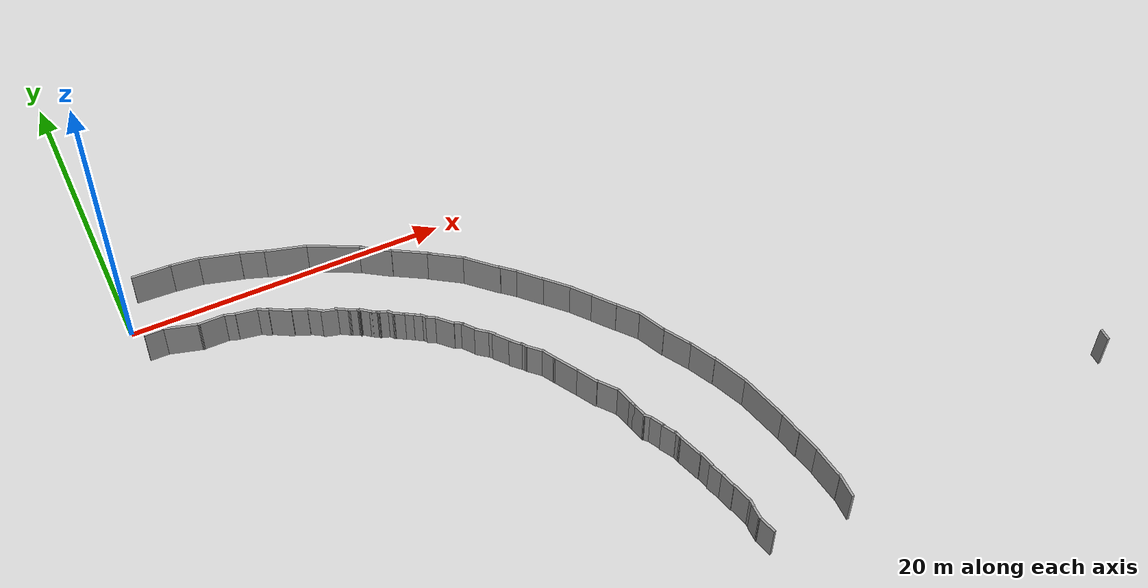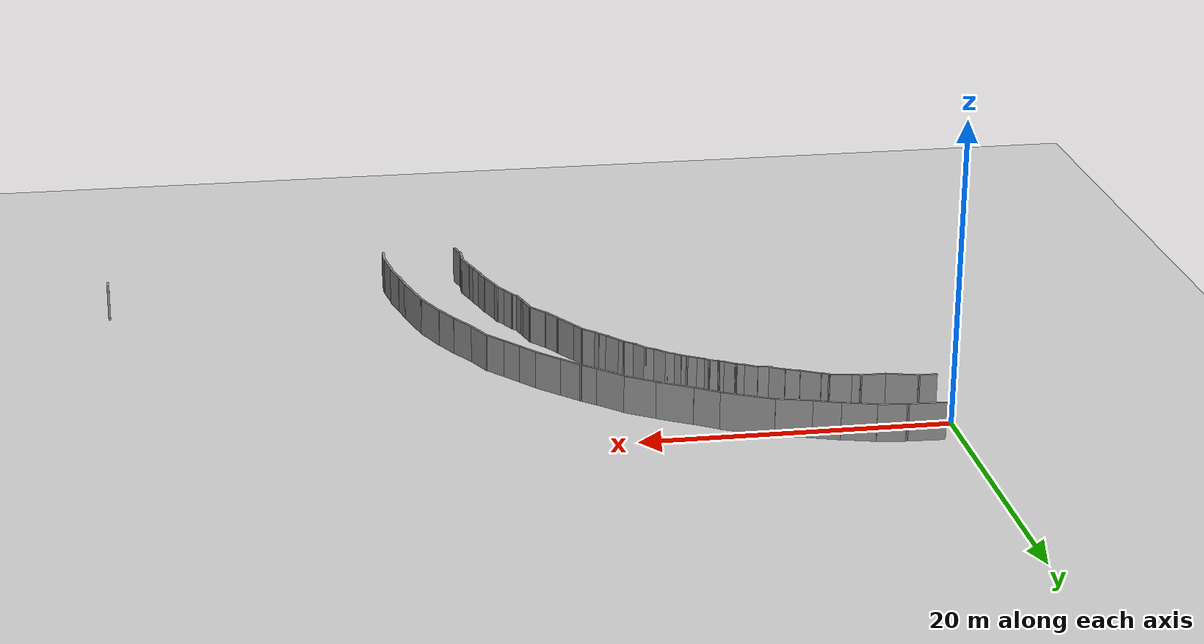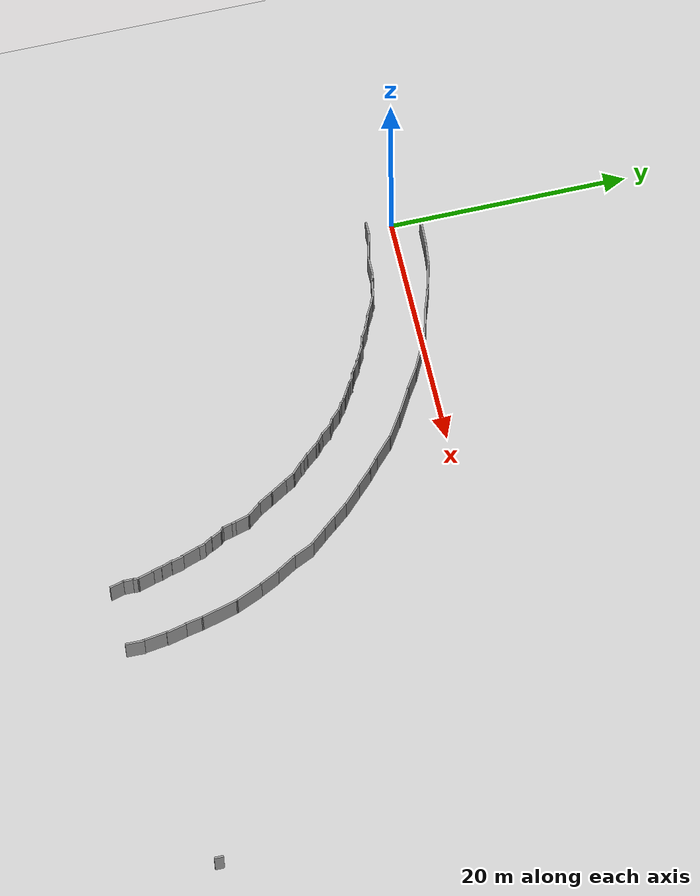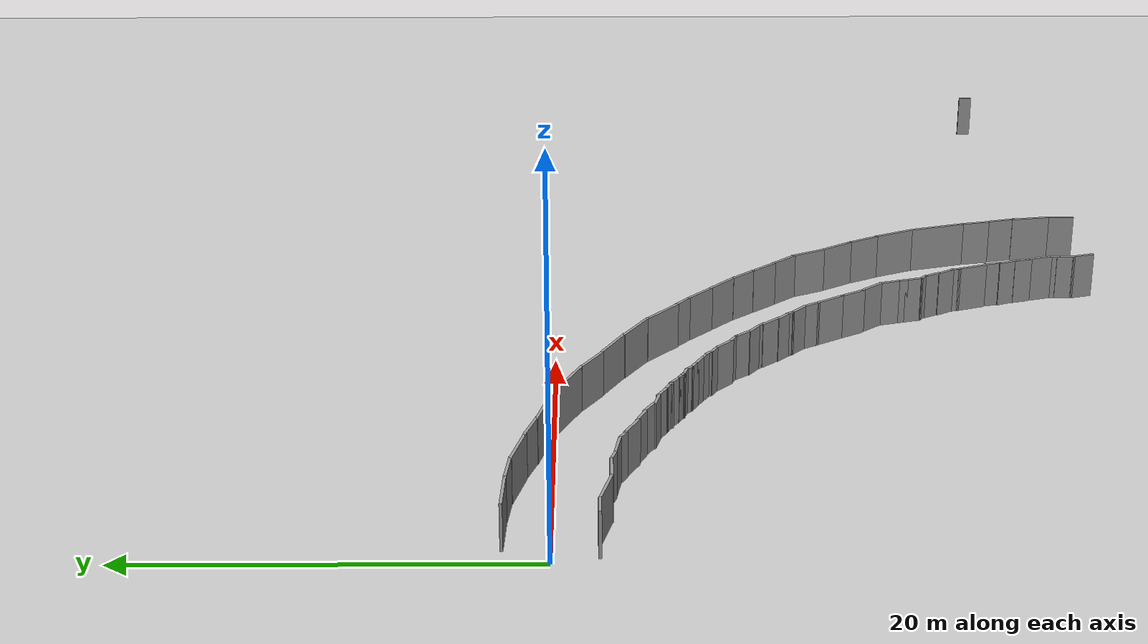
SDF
<sdf version="1.6">
 <world name="default">
  <model name="ground_plane">
   <static>1</static>
   <link name="link">
    <collision name="collision">
     <geometry><plane><normal>0 0 1</normal><size>100 100</size></plane></geometry>
     <surface><friction><ode><mu>100</mu><mu2>50</mu2></ode></friction></surface>
    </collision>
    <visual name="visual">
     <cast_shadows>0</cast_shadows>
     <geometry><plane><normal>0 0 1</normal><size>100 100</size></plane></geometry>
     <material>
      <script><uri>file://media/materials/scripts/gazebo.material</uri><name>Gazebo/Grey</name></script>
     </material>
    </visual>
   </link>
  </model>
  <model name="yuvarlak_sonnn">
   <pose>8.74042 -31.6469 0 0 -0 0</pose>
   <link name="Wall_136">
    <collision name="Wall_136_Collision">
     <geometry><box><size>1.56151 0.15 2.5</size></box></geometry>
     <pose>0 0 1.25 0 -0 0</pose>
    </collision>
    <visual name="Wall_136_Visual">
     <pose>0 0 1.25 0 -0 0</pose>
     <geometry><box><size>1.56151 0.15 2.5</size></box></geometry>
     <material>
      <script><uri>file://media/materials/scripts/gazebo.material</uri><name>Gazebo/Grey</name></script>
      <ambient>1 1 1 1</ambient>
     </material>
    </visual>
    <pose>24.218 3.14095 0 0 -0 1.54912</pose>
   </link>
   <link name="Wall_137">
    <collision name="Wall_137_Collision">
     <geometry><box><size>2.14335 0.15 2.5</size></box></geometry>
     <pose>0 0 1.25 0 -0 0</pose>
    </collision>
    <visual name="Wall_137_Visual">
     <pose>0 0 1.25 0 -0 0</pose>
     <geometry><box><size>2.14335 0.15 2.5</size></box></geometry>
     <material>
      <script><uri>file://media/materials/scripts/gazebo.material</uri><name>Gazebo/Grey</name></script>
      <ambient>1 1 1 1</ambient>
     </material>
    </visual>
    <pose>24.0632 4.83341 0 0 -0 1.71117</pose>
   </link>
   <link name="Wall_138">
    <collision name="Wall_138_Collision">
     <geometry><box><size>1.71566 0.15 2.5</size></box></geometry>
     <pose>0 0 1.25 0 -0 0</pose>
    </collision>
    <visual name="Wall_138_Visual">
     <pose>0 0 1.25 0 -0 0</pose>
     <geometry><box><size>1.71566 0.15 2.5</size></box></geometry>
     <material>
      <script><uri>file://media/materials/scripts/gazebo.material</uri><name>Gazebo/Grey</name></script>
      <ambient>1 1 1 1</ambient>
     </material>
    </visual>
    <pose>23.7779 6.58296 0 0 -0 1.79817</pose>
   </link>
   <link name="Wall_139">
    <collision name="Wall_139_Collision">
     <geometry><box><size>1.60282 0.15 2.5</size></box></geometry>
     <pose>0 0 1.25 0 -0 0</pose>
    </collision>
    <visual name="Wall_139_Visual">
     <pose>0 0 1.25 0 -0 0</pose>
     <geometry><box><size>1.60282 0.15 2.5</size></box></geometry>
     <material>
      <script><uri>file://media/materials/scripts/gazebo.material</uri><name>Gazebo/Grey</name></script>
      <ambient>1 1 1 1</ambient>
     </material>
    </visual>
    <pose>23.4362 8.05945 0 0 -0 1.75733</pose>
   </link>
   <link name="Wall_140">
    <collision name="Wall_140_Collision">
     <geometry><box><size>3.25 0.15 2.5</size></box></geometry>
     <pose>0 0 1.25 0 -0 0</pose>
    </collision>
    <visual name="Wall_140_Visual">
     <pose>0 0 1.25 0 -0 0</pose>
     <geometry><box><size>3.25 0.15 2.5</size></box></geometry>
     <material>
      <script><uri>file://media/materials/scripts/gazebo.material</uri><name>Gazebo/Grey</name></script>
      <ambient>1 1 1 1</ambient>
     </material>
    </visual>
    <pose>22.9003 10.2704 0 0 -0 1.8326</pose>
   </link>
   <link name="Wall_141">
    <collision name="Wall_141_Collision">
     <geometry><box><size>2.47557 0.15 2.5</size></box></geometry>
     <pose>0 0 1.25 0 -0 0</pose>
    </collision>
    <visual name="Wall_141_Visual">
     <pose>0 0 1.25 0 -0 0</pose>
     <geometry><box><size>2.47557 0.15 2.5</size></box></geometry>
     <material>
      <script><uri>file://media/materials/scripts/gazebo.material</uri><name>Gazebo/Grey</name></script>
      <ambient>1 1 1 1</ambient>
     </material>
    </visual>
    <pose>22.0445 12.8379 0 0 -0 1.97247</pose>
   </link>
   <link name="Wall_142">
    <collision name="Wall_142_Collision">
     <geometry><box><size>1.90004 0.15 2.5</size></box></geometry>
     <pose>0 0 1.25 0 -0 0</pose>
    </collision>
    <visual name="Wall_142_Visual">
     <pose>0 0 1.25 0 -0 0</pose>
     <geometry><box><size>1.90004 0.15 2.5</size></box></geometry>
     <material>
      <script><uri>file://media/materials/scripts/gazebo.material</uri><name>Gazebo/Grey</name></script>
      <ambient>1 1 1 1</ambient>
     </material>
    </visual>
    <pose>21.1798 14.6713 0 0 -0 2.03268</pose>
   </link>
   <link name="Wall_143">
    <collision name="Wall_143_Collision">
     <geometry><box><size>2.02044 0.15 2.5</size></box></geometry>
     <pose>0 0 1.25 0 -0 0</pose>
    </collision>
    <visual name="Wall_143_Visual">
     <pose>0 0 1.25 0 -0 0</pose>
     <geometry><box><size>2.02044 0.15 2.5</size></box></geometry>
     <material>
      <script><uri>file://media/materials/scripts/gazebo.material</uri><name>Gazebo/Grey</name></script>
      <ambient>1 1 1 1</ambient>
     </material>
    </visual>
    <pose>20.3073 16.2356 0 0 -0 2.11302</pose>
   </link>
   <link name="Wall_144">
    <collision name="Wall_144_Collision">
     <geometry><box><size>2.02372 0.15 2.5</size></box></geometry>
     <pose>0 0 1.25 0 -0 0</pose>
    </collision>
    <visual name="Wall_144_Visual">
     <pose>0 0 1.25 0 -0 0</pose>
     <geometry><box><size>2.02372 0.15 2.5</size></box></geometry>
     <material>
      <script><uri>file://media/materials/scripts/gazebo.material</uri><name>Gazebo/Grey</name></script>
      <ambient>1 1 1 1</ambient>
     </material>
    </visual>
    <pose>19.4326 17.8679 0 0 -0 2.0024</pose>
   </link>
   <link name="Wall_145">
    <collision name="Wall_145_Collision">
     <geometry><box><size>1.67133 0.15 2.5</size></box></geometry>
     <pose>0 0 1.25 0 -0 0</pose>
    </collision>
    <visual name="Wall_145_Visual">
     <pose>0 0 1.25 0 -0 0</pose>
     <geometry><box><size>1.67133 0.15 2.5</size></box></geometry>
     <material>
      <script><uri>file://media/materials/scripts/gazebo.material</uri><name>Gazebo/Grey</name></script>
      <ambient>1 1 1 1</ambient>
     </material>
    </visual>
    <pose>18.5351 19.285 0 0 -0 2.26257</pose>
   </link>
   <link name="Wall_146">
    <collision name="Wall_146_Collision">
     <geometry><box><size>1.63137 0.15 2.5</size></box></geometry>
     <pose>0 0 1.25 0 -0 0</pose>
    </collision>
    <visual name="Wall_146_Visual">
     <pose>0 0 1.25 0 -0 0</pose>
     <geometry><box><size>1.63137 0.15 2.5</size></box></geometry>
     <material>
      <script><uri>file://media/materials/scripts/gazebo.material</uri><name>Gazebo/Grey</name></script>
      <ambient>1 1 1 1</ambient>
     </material>
    </visual>
    <pose>17.5795 20.4228 0 0 -0 2.25891</pose>
   </link>
   <link name="Wall_147">
    <collision name="Wall_147_Collision">
     <geometry><box><size>1.58845 0.15 2.5</size></box></geometry>
     <pose>0 0 1.25 0 -0 0</pose>
    </collision>
    <visual name="Wall_147_Visual">
     <pose>0 0 1.25 0 -0 0</pose>
     <geometry><box><size>1.58845 0.15 2.5</size></box></geometry>
     <material>
      <script><uri>file://media/materials/scripts/gazebo.material</uri><name>Gazebo/Grey</name></script>
      <ambient>1 1 1 1</ambient>
     </material>
    </visual>
    <pose>16.6509 21.5694 0 0 -0 2.26146</pose>
   </link>
   <link name="Wall_148">
    <collision name="Wall_148_Collision">
     <geometry><box><size>2 0.15 2.5</size></box></geometry>
     <pose>0 0 1.25 0 -0 0</pose>
    </collision>
    <visual name="Wall_148_Visual">
     <pose>0 0 1.25 0 -0 0</pose>
     <geometry><box><size>2 0.15 2.5</size></box></geometry>
     <material>
      <script><uri>file://media/materials/scripts/gazebo.material</uri><name>Gazebo/Grey</name></script>
      <ambient>1 1 1 1</ambient>
     </material>
    </visual>
    <pose>15.5588 22.7779 0 0 -0 2.35619</pose>
   </link>
   <link name="Wall_149">
    <collision name="Wall_149_Collision">
     <geometry><box><size>1.82124 0.15 2.5</size></box></geometry>
     <pose>0 0 1.25 0 -0 0</pose>
    </collision>
    <visual name="Wall_149_Visual">
     <pose>0 0 1.25 0 -0 0</pose>
     <geometry><box><size>1.82124 0.15 2.5</size></box></geometry>
     <material>
      <script><uri>file://media/materials/scripts/gazebo.material</uri><name>Gazebo/Grey</name></script>
      <ambient>1 1 1 1</ambient>
     </material>
    </visual>
    <pose>14.2977 24.0268 0 0 -0 2.34944</pose>
   </link>
   <link name="Wall_150">
    <collision name="Wall_150_Collision">
     <geometry><box><size>1.2381 0.15 2.5</size></box></geometry>
     <pose>0 0 1.25 0 -0 0</pose>
    </collision>
    <visual name="Wall_150_Visual">
     <pose>0 0 1.25 0 -0 0</pose>
     <geometry><box><size>1.2381 0.15 2.5</size></box></geometry>
     <material>
      <script><uri>file://media/materials/scripts/gazebo.material</uri><name>Gazebo/Grey</name></script>
      <ambient>1 1 1 1</ambient>
     </material>
    </visual>
    <pose>13.3018 24.9804 0 0 -0 2.42159</pose>
   </link>
   <link name="Wall_151">
    <collision name="Wall_151_Collision">
     <geometry><box><size>2.40289 0.15 2.5</size></box></geometry>
     <pose>0 0 1.25 0 -0 0</pose>
    </collision>
    <visual name="Wall_151_Visual">
     <pose>0 0 1.25 0 -0 0</pose>
     <geometry><box><size>2.40289 0.15 2.5</size></box></geometry>
     <material>
      <script><uri>file://media/materials/scripts/gazebo.material</uri><name>Gazebo/Grey</name></script>
      <ambient>1 1 1 1</ambient>
     </material>
    </visual>
    <pose>12.0529 26.0916 0 0 -0 2.38584</pose>
   </link>
   <link name="Wall_154">
    <collision name="Wall_154_Collision">
     <geometry><box><size>2.39428 0.15 2.5</size></box></geometry>
     <pose>0 0 1.25 0 -0 0</pose>
    </collision>
    <visual name="Wall_154_Visual">
     <pose>0 0 1.25 0 -0 0</pose>
     <geometry><box><size>2.39428 0.15 2.5</size></box></geometry>
     <material>
      <script><uri>file://media/materials/scripts/gazebo.material</uri><name>Gazebo/Grey</name></script>
      <ambient>1 1 1 1</ambient>
     </material>
    </visual>
    <pose>10.3105 27.493 0 0 -0 2.56827</pose>
   </link>
   <link name="Wall_155">
    <collision name="Wall_155_Collision">
     <geometry><box><size>2.5 0.15 2.5</size></box></geometry>
     <pose>0 0 1.25 0 -0 0</pose>
    </collision>
    <visual name="Wall_155_Visual">
     <pose>0 0 1.25 0 -0 0</pose>
     <geometry><box><size>2.5 0.15 2.5</size></box></geometry>
     <material>
      <script><uri>file://media/materials/scripts/gazebo.material</uri><name>Gazebo/Grey</name></script>
      <ambient>1 1 1 1</ambient>
     </material>
    </visual>
    <pose>8.40374 28.6891 0 0 -0 2.61799</pose>
   </link>
   <link name="Wall_156">
    <collision name="Wall_156_Collision">
     <geometry><box><size>2.01077 0.15 2.5</size></box></geometry>
     <pose>0 0 1.25 0 -0 0</pose>
    </collision>
    <visual name="Wall_156_Visual">
     <pose>0 0 1.25 0 -0 0</pose>
     <geometry><box><size>2.01077 0.15 2.5</size></box></geometry>
     <material>
      <script><uri>file://media/materials/scripts/gazebo.material</uri><name>Gazebo/Grey</name></script>
      <ambient>1 1 1 1</ambient>
     </material>
    </visual>
    <pose>6.55302 29.7844 0 0 -0 2.56435</pose>
   </link>
   <link name="Wall_157">
    <collision name="Wall_157_Collision">
     <geometry><box><size>3.52899 0.15 2.5</size></box></geometry>
     <pose>0 0 1.25 0 -0 0</pose>
    </collision>
    <visual name="Wall_157_Visual">
     <pose>0 0 1.25 0 -0 0</pose>
     <geometry><box><size>3.52899 0.15 2.5</size></box></geometry>
     <material>
      <script><uri>file://media/materials/scripts/gazebo.material</uri><name>Gazebo/Grey</name></script>
      <ambient>1 1 1 1</ambient>
     </material>
    </visual>
    <pose>4.25608 31.0553 0 0 -0 2.68618</pose>
   </link>
   <link name="Wall_158">
    <collision name="Wall_158_Collision">
     <geometry><box><size>2.60619 0.15 2.5</size></box></geometry>
     <pose>0 0 1.25 0 -0 0</pose>
    </collision>
    <visual name="Wall_158_Visual">
     <pose>0 0 1.25 0 -0 0</pose>
     <geometry><box><size>2.60619 0.15 2.5</size></box></geometry>
     <material>
      <script><uri>file://media/materials/scripts/gazebo.material</uri><name>Gazebo/Grey</name></script>
      <ambient>1 1 1 1</ambient>
     </material>
    </visual>
    <pose>1.55261 32.0964 0 0 -0 2.87956</pose>
   </link>
   <link name="Wall_159">
    <collision name="Wall_159_Collision">
     <geometry><box><size>1.77801 0.15 2.5</size></box></geometry>
     <pose>0 0 1.25 0 -0 0</pose>
    </collision>
    <visual name="Wall_159_Visual">
     <pose>0 0 1.25 0 -0 0</pose>
     <geometry><box><size>1.77801 0.15 2.5</size></box></geometry>
     <material>
      <script><uri>file://media/materials/scripts/gazebo.material</uri><name>Gazebo/Grey</name></script>
      <ambient>1 1 1 1</ambient>
     </material>
    </visual>
    <pose>-0.40447 32.696 0 0 -0 2.81472</pose>
   </link>
   <link name="Wall_160">
    <collision name="Wall_160_Collision">
     <geometry><box><size>2.5 0.15 2.5</size></box></geometry>
     <pose>0 0 1.25 0 -0 0</pose>
    </collision>
    <visual name="Wall_160_Visual">
     <pose>0 0 1.25 0 -0 0</pose>
     <geometry><box><size>2.5 0.15 2.5</size></box></geometry>
     <material>
      <script><uri>file://media/materials/scripts/gazebo.material</uri><name>Gazebo/Grey</name></script>
      <ambient>1 1 1 1</ambient>
     </material>
    </visual>
    <pose>-2.31034 33.2414 0 0 -0 2.87979</pose>
   </link>
   <link name="Wall_161">
    <collision name="Wall_161_Collision">
     <geometry><box><size>1.96781 0.15 2.5</size></box></geometry>
     <pose>0 0 1.25 0 -0 0</pose>
    </collision>
    <visual name="Wall_161_Visual">
     <pose>0 0 1.25 0 -0 0</pose>
     <geometry><box><size>1.96781 0.15 2.5</size></box></geometry>
     <material>
      <script><uri>file://media/materials/scripts/gazebo.material</uri><name>Gazebo/Grey</name></script>
      <ambient>1 1 1 1</ambient>
     </material>
    </visual>
    <pose>-4.34884 33.6642 0 0 -0 3.03288</pose>
   </link>
   <link name="Wall_162">
    <collision name="Wall_162_Collision">
     <geometry><box><size>2.52148 0.15 2.5</size></box></geometry>
     <pose>0 0 1.25 0 -0 0</pose>
    </collision>
    <visual name="Wall_162_Visual">
     <pose>0 0 1.25 0 -0 0</pose>
     <geometry><box><size>2.52148 0.15 2.5</size></box></geometry>
     <material>
      <script><uri>file://media/materials/scripts/gazebo.material</uri><name>Gazebo/Grey</name></script>
      <ambient>1 1 1 1</ambient>
     </material>
    </visual>
    <pose>-6.43743 33.8131 0 0 -0 3.09919</pose>
   </link>
   <link name="Wall_214">
    <collision name="Wall_214_Collision">
     <geometry><box><size>1.25 0.15 2.5</size></box></geometry>
     <pose>0 0 1.25 0 -0 0</pose>
    </collision>
    <visual name="Wall_214_Visual">
     <pose>0 0 1.25 0 -0 0</pose>
     <geometry><box><size>1.25 0.15 2.5</size></box></geometry>
     <material>
      <script><uri>file://media/materials/scripts/gazebo.material</uri><name>Gazebo/Grey</name></script>
      <ambient>1 1 1 1</ambient>
     </material>
    </visual>
    <pose>-7.68507 29.3984 0 0 -0 0</pose>
   </link>
   <link name="Wall_215">
    <collision name="Wall_215_Collision">
     <geometry><box><size>2.25 0.15 2.5</size></box></geometry>
     <pose>0 0 1.25 0 -0 0</pose>
    </collision>
    <visual name="Wall_215_Visual">
     <pose>0 0 1.25 0 -0 0</pose>
     <geometry><box><size>2.25 0.15 2.5</size></box></geometry>
     <material>
      <script><uri>file://media/materials/scripts/gazebo.material</uri><name>Gazebo/Grey</name></script>
      <ambient>1 1 1 1</ambient>
     </material>
    </visual>
    <pose>-6.12085 29.1267 0 0 0 -0.261799</pose>
   </link>
   <link name="Wall_216">
    <collision name="Wall_216_Collision">
     <geometry><box><size>1.75 0.15 2.5</size></box></geometry>
     <pose>0 0 1.25 0 -0 0</pose>
    </collision>
    <visual name="Wall_216_Visual">
     <pose>0 0 1.25 0 -0 0</pose>
     <geometry><box><size>1.75 0.15 2.5</size></box></geometry>
     <material>
      <script><uri>file://media/materials/scripts/gazebo.material</uri><name>Gazebo/Grey</name></script>
      <ambient>1 1 1 1</ambient>
     </material>
    </visual>
    <pose>-4.30663 28.8549 0 0 -0 0</pose>
   </link>
   <link name="Wall_217">
    <collision name="Wall_217_Collision">
     <geometry><box><size>0.733235 0.15 2.5</size></box></geometry>
     <pose>0 0 1.25 0 -0 0</pose>
    </collision>
    <visual name="Wall_217_Visual">
     <pose>0 0 1.25 0 -0 0</pose>
     <geometry><box><size>0.733235 0.15 2.5</size></box></geometry>
     <material>
      <script><uri>file://media/materials/scripts/gazebo.material</uri><name>Gazebo/Grey</name></script>
      <ambient>1 1 1 1</ambient>
     </material>
    </visual>
    <pose>-3.2297 28.7635 0 0 0 -0.318755</pose>
   </link>
   <link name="Wall_218">
    <collision name="Wall_218_Collision">
     <geometry><box><size>1.5064 0.15 2.5</size></box></geometry>
     <pose>0 0 1.25 0 -0 0</pose>
    </collision>
    <visual name="Wall_218_Visual">
     <pose>0 0 1.25 0 -0 0</pose>
     <geometry><box><size>1.5064 0.15 2.5</size></box></geometry>
     <material>
      <script><uri>file://media/materials/scripts/gazebo.material</uri><name>Gazebo/Grey</name></script>
      <ambient>1 1 1 1</ambient>
     </material>
    </visual>
    <pose>-2.22213 28.5615 0 0 0 -0.163832</pose>
   </link>
   <link name="Wall_219">
    <collision name="Wall_219_Collision">
     <geometry><box><size>0.75 0.15 2.5</size></box></geometry>
     <pose>0 0 1.25 0 -0 0</pose>
    </collision>
    <visual name="Wall_219_Visual">
     <pose>0 0 1.25 0 -0 0</pose>
     <geometry><box><size>0.75 0.15 2.5</size></box></geometry>
     <material>
      <script><uri>file://media/materials/scripts/gazebo.material</uri><name>Gazebo/Grey</name></script>
      <ambient>1 1 1 1</ambient>
     </material>
    </visual>
    <pose>-1.2932 28.3009 0 0 0 -0.523599</pose>
   </link>
   <link name="Wall_220">
    <collision name="Wall_220_Collision">
     <geometry><box><size>1.55362 0.15 2.5</size></box></geometry>
     <pose>0 0 1.25 0 -0 0</pose>
    </collision>
    <visual name="Wall_220_Visual">
     <pose>0 0 1.25 0 -0 0</pose>
     <geometry><box><size>1.55362 0.15 2.5</size></box></geometry>
     <material>
      <script><uri>file://media/materials/scripts/gazebo.material</uri><name>Gazebo/Grey</name></script>
      <ambient>1 1 1 1</ambient>
     </material>
    </visual>
    <pose>-0.418061 27.8749 0 0 0 -0.501679</pose>
   </link>
   <link name="Wall_221">
    <collision name="Wall_221_Collision">
     <geometry><box><size>1.12088 0.15 2.5</size></box></geometry>
     <pose>0 0 1.25 0 -0 0</pose>
    </collision>
    <visual name="Wall_221_Visual">
     <pose>0 0 1.25 0 -0 0</pose>
     <geometry><box><size>1.12088 0.15 2.5</size></box></geometry>
     <material>
      <script><uri>file://media/materials/scripts/gazebo.material</uri><name>Gazebo/Grey</name></script>
      <ambient>1 1 1 1</ambient>
     </material>
    </visual>
    <pose>0.638553 27.3967 0 0 0 -0.429829</pose>
   </link>
   <link name="Wall_222">
    <collision name="Wall_222_Collision">
     <geometry><box><size>1.08432 0.15 2.5</size></box></geometry>
     <pose>0 0 1.25 0 -0 0</pose>
    </collision>
    <visual name="Wall_222_Visual">
     <pose>0 0 1.25 0 -0 0</pose>
     <geometry><box><size>1.08432 0.15 2.5</size></box></geometry>
     <material>
      <script><uri>file://media/materials/scripts/gazebo.material</uri><name>Gazebo/Grey</name></script>
      <ambient>1 1 1 1</ambient>
     </material>
    </visual>
    <pose>1.47866 27.0126 0 0 0 -0.547705</pose>
   </link>
   <link name="Wall_223">
    <collision name="Wall_223_Collision">
     <geometry><box><size>1 0.15 2.5</size></box></geometry>
     <pose>0 0 1.25 0 -0 0</pose>
    </collision>
    <visual name="Wall_223_Visual">
     <pose>0 0 1.25 0 -0 0</pose>
     <geometry><box><size>1 0.15 2.5</size></box></geometry>
     <material>
      <script><uri>file://media/materials/scripts/gazebo.material</uri><name>Gazebo/Grey</name></script>
      <ambient>1 1 1 1</ambient>
     </material>
    </visual>
    <pose>2.288 26.5978 0 0 0 -0.261799</pose>
   </link>
   <link name="Wall_224">
    <collision name="Wall_224_Collision">
     <geometry><box><size>0.970754 0.15 2.5</size></box></geometry>
     <pose>0 0 1.25 0 -0 0</pose>
    </collision>
    <visual name="Wall_224_Visual">
     <pose>0 0 1.25 0 -0 0</pose>
     <geometry><box><size>0.970754 0.15 2.5</size></box></geometry>
     <material>
      <script><uri>file://media/materials/scripts/gazebo.material</uri><name>Gazebo/Grey</name></script>
      <ambient>1 1 1 1</ambient>
     </material>
    </visual>
    <pose>3.05051 26.3384 0 0 0 -0.539953</pose>
   </link>
   <link name="Wall_225">
    <collision name="Wall_225_Collision">
     <geometry><box><size>0.669272 0.15 2.5</size></box></geometry>
     <pose>0 0 1.25 0 -0 0</pose>
    </collision>
    <visual name="Wall_225_Visual">
     <pose>0 0 1.25 0 -0 0</pose>
     <geometry><box><size>0.669272 0.15 2.5</size></box></geometry>
     <material>
      <script><uri>file://media/materials/scripts/gazebo.material</uri><name>Gazebo/Grey</name></script>
      <ambient>1 1 1 1</ambient>
     </material>
    </visual>
    <pose>3.63921 26.0207 0 0 0 -0.423501</pose>
   </link>
   <link name="Wall_226">
    <collision name="Wall_226_Collision">
     <geometry><box><size>0.25 0.15 2.5</size></box></geometry>
     <pose>0 0 1.25 0 -0 0</pose>
    </collision>
    <visual name="Wall_226_Visual">
     <pose>0 0 1.25 0 -0 0</pose>
     <geometry><box><size>0.25 0.15 2.5</size></box></geometry>
     <material>
      <script><uri>file://media/materials/scripts/gazebo.material</uri><name>Gazebo/Grey</name></script>
      <ambient>1 1 1 1</ambient>
     </material>
    </visual>
    <pose>3.90091 25.8707 0 0 0 -1.0472</pose>
   </link>
   <link name="Wall_227">
    <collision name="Wall_227_Collision">
     <geometry><box><size>0.226399 0.15 2.5</size></box></geometry>
     <pose>0 0 1.25 0 -0 0</pose>
    </collision>
    <visual name="Wall_227_Visual">
     <pose>0 0 1.25 0 -0 0</pose>
     <geometry><box><size>0.226399 0.15 2.5</size></box></geometry>
     <material>
      <script><uri>file://media/materials/scripts/gazebo.material</uri><name>Gazebo/Grey</name></script>
      <ambient>1 1 1 1</ambient>
     </material>
    </visual>
    <pose>3.95764 25.8487 0 0 -0 0.590266</pose>
   </link>
   <link name="Wall_228">
    <collision name="Wall_228_Collision">
     <geometry><box><size>0.806316 0.15 2.5</size></box></geometry>
     <pose>0 0 1.25 0 -0 0</pose>
    </collision>
    <visual name="Wall_228_Visual">
     <pose>0 0 1.25 0 -0 0</pose>
     <geometry><box><size>0.806316 0.15 2.5</size></box></geometry>
     <material>
      <script><uri>file://media/materials/scripts/gazebo.material</uri><name>Gazebo/Grey</name></script>
      <ambient>1 1 1 1</ambient>
     </material>
    </visual>
    <pose>4.27458 25.6724 0 0 0 -0.645801</pose>
   </link>
   <link name="Wall_229">
    <collision name="Wall_229_Collision">
     <geometry><box><size>0.554966 0.15 2.5</size></box></geometry>
     <pose>0 0 1.25 0 -0 0</pose>
    </collision>
    <visual name="Wall_229_Visual">
     <pose>0 0 1.25 0 -0 0</pose>
     <geometry><box><size>0.554966 0.15 2.5</size></box></geometry>
     <material>
      <script><uri>file://media/materials/scripts/gazebo.material</uri><name>Gazebo/Grey</name></script>
      <ambient>1 1 1 1</ambient>
     </material>
    </visual>
    <pose>4.69413 25.3834 0 0 0 -0.469184</pose>
   </link>
   <link name="Wall_230">
    <collision name="Wall_230_Collision">
     <geometry><box><size>0.25 0.15 2.5</size></box></geometry>
     <pose>0 0 1.25 0 -0 0</pose>
    </collision>
    <visual name="Wall_230_Visual">
     <pose>0 0 1.25 0 -0 0</pose>
     <geometry><box><size>0.25 0.15 2.5</size></box></geometry>
     <material>
      <script><uri>file://media/materials/scripts/gazebo.material</uri><name>Gazebo/Grey</name></script>
      <ambient>1 1 1 1</ambient>
     </material>
    </visual>
    <pose>4.91008 25.2565 0 0 0 -0.785398</pose>
   </link>
   <link name="Wall_231">
    <collision name="Wall_231_Collision">
     <geometry><box><size>0.705647 0.15 2.5</size></box></geometry>
     <pose>0 0 1.25 0 -0 0</pose>
    </collision>
    <visual name="Wall_231_Visual">
     <pose>0 0 1.25 0 -0 0</pose>
     <geometry><box><size>0.705647 0.15 2.5</size></box></geometry>
     <material>
      <script><uri>file://media/materials/scripts/gazebo.material</uri><name>Gazebo/Grey</name></script>
      <ambient>1 1 1 1</ambient>
     </material>
    </visual>
    <pose>5.20883 25.1327 0 0 0 -0.323773</pose>
   </link>
   <link name="Wall_232">
    <collision name="Wall_232_Collision">
     <geometry><box><size>0.5 0.15 2.5</size></box></geometry>
     <pose>0 0 1.25 0 -0 0</pose>
    </collision>
    <visual name="Wall_232_Visual">
     <pose>0 0 1.25 0 -0 0</pose>
     <geometry><box><size>0.5 0.15 2.5</size></box></geometry>
     <material>
      <script><uri>file://media/materials/scripts/gazebo.material</uri><name>Gazebo/Grey</name></script>
      <ambient>1 1 1 1</ambient>
     </material>
    </visual>
    <pose>5.59596 24.9206 0 0 0 -0.785398</pose>
   </link>
   <link name="Wall_233">
    <collision name="Wall_233_Collision">
     <geometry><box><size>0.75 0.15 2.5</size></box></geometry>
     <pose>0 0 1.25 0 -0 0</pose>
    </collision>
    <visual name="Wall_233_Visual">
     <pose>0 0 1.25 0 -0 0</pose>
     <geometry><box><size>0.75 0.15 2.5</size></box></geometry>
     <material>
      <script><uri>file://media/materials/scripts/gazebo.material</uri><name>Gazebo/Grey</name></script>
      <ambient>1 1 1 1</ambient>
     </material>
    </visual>
    <pose>5.97951 24.6469 0 0 0 -0.523599</pose>
   </link>
   <link name="Wall_234">
    <collision name="Wall_234_Collision">
     <geometry><box><size>0.75 0.15 2.5</size></box></geometry>
     <pose>0 0 1.25 0 -0 0</pose>
    </collision>
    <visual name="Wall_234_Visual">
     <pose>0 0 1.25 0 -0 0</pose>
     <geometry><box><size>0.75 0.15 2.5</size></box></geometry>
     <material>
      <script><uri>file://media/materials/scripts/gazebo.material</uri><name>Gazebo/Grey</name></script>
      <ambient>1 1 1 1</ambient>
     </material>
    </visual>
    <pose>6.49913 24.3469 0 0 0 -0.523599</pose>
   </link>
   <link name="Wall_235">
    <collision name="Wall_235_Collision">
     <geometry><box><size>0.611601 0.15 2.5</size></box></geometry>
     <pose>0 0 1.25 0 -0 0</pose>
    </collision>
    <visual name="Wall_235_Visual">
     <pose>0 0 1.25 0 -0 0</pose>
     <geometry><box><size>0.611601 0.15 2.5</size></box></geometry>
     <material>
      <script><uri>file://media/materials/scripts/gazebo.material</uri><name>Gazebo/Grey</name></script>
      <ambient>1 1 1 1</ambient>
     </material>
    </visual>
    <pose>6.95348 24.0727 0 0 0 -0.568137</pose>
   </link>
   <link name="Wall_236">
    <collision name="Wall_236_Collision">
     <geometry><box><size>0.5 0.15 2.5</size></box></geometry>
     <pose>0 0 1.25 0 -0 0</pose>
    </collision>
    <visual name="Wall_236_Visual">
     <pose>0 0 1.25 0 -0 0</pose>
     <geometry><box><size>0.5 0.15 2.5</size></box></geometry>
     <material>
      <script><uri>file://media/materials/scripts/gazebo.material</uri><name>Gazebo/Grey</name></script>
      <ambient>1 1 1 1</ambient>
     </material>
    </visual>
    <pose>7.27176 23.8599 0 0 0 -0.785398</pose>
   </link>
   <link name="Wall_237">
    <collision name="Wall_237_Collision">
     <geometry><box><size>0.776546 0.15 2.5</size></box></geometry>
     <pose>0 0 1.25 0 -0 0</pose>
    </collision>
    <visual name="Wall_237_Visual">
     <pose>0 0 1.25 0 -0 0</pose>
     <geometry><box><size>0.776546 0.15 2.5</size></box></geometry>
     <material>
      <script><uri>file://media/materials/scripts/gazebo.material</uri><name>Gazebo/Grey</name></script>
      <ambient>1 1 1 1</ambient>
     </material>
    </visual>
    <pose>7.67008 23.5502 0 0 0 -0.502324</pose>
   </link>
   <link name="Wall_238">
    <collision name="Wall_238_Collision">
     <geometry><box><size>1.22102 0.15 2.5</size></box></geometry>
     <pose>0 0 1.25 0 -0 0</pose>
    </collision>
    <visual name="Wall_238_Visual">
     <pose>0 0 1.25 0 -0 0</pose>
     <geometry><box><size>1.22102 0.15 2.5</size></box></geometry>
     <material>
      <script><uri>file://media/materials/scripts/gazebo.material</uri><name>Gazebo/Grey</name></script>
      <ambient>1 1 1 1</ambient>
     </material>
    </visual>
    <pose>8.28783 23.0204 0 0 0 -0.786214</pose>
   </link>
   <link name="Wall_239">
    <collision name="Wall_239_Collision">
     <geometry><box><size>0.671083 0.15 2.5</size></box></geometry>
     <pose>0 0 1.25 0 -0 0</pose>
    </collision>
    <visual name="Wall_239_Visual">
     <pose>0 0 1.25 0 -0 0</pose>
     <geometry><box><size>0.671083 0.15 2.5</size></box></geometry>
     <material>
      <script><uri>file://media/materials/scripts/gazebo.material</uri><name>Gazebo/Grey</name></script>
      <ambient>1 1 1 1</ambient>
     </material>
    </visual>
    <pose>8.93064 22.5177 0 0 0 -0.494905</pose>
   </link>
   <link name="Wall_240">
    <collision name="Wall_240_Collision">
     <geometry><box><size>1.10594 0.15 2.5</size></box></geometry>
     <pose>0 0 1.25 0 -0 0</pose>
    </collision>
    <visual name="Wall_240_Visual">
     <pose>0 0 1.25 0 -0 0</pose>
     <geometry><box><size>1.10594 0.15 2.5</size></box></geometry>
     <material>
      <script><uri>file://media/materials/scripts/gazebo.material</uri><name>Gazebo/Grey</name></script>
      <ambient>1 1 1 1</ambient>
     </material>
    </visual>
    <pose>9.4257 22.0226 0 0 0 -0.889673</pose>
   </link>
   <link name="Wall_241">
    <collision name="Wall_241_Collision">
     <geometry><box><size>0.957832 0.15 2.5</size></box></geometry>
     <pose>0 0 1.25 0 -0 0</pose>
    </collision>
    <visual name="Wall_241_Visual">
     <pose>0 0 1.25 0 -0 0</pose>
     <geometry><box><size>0.957832 0.15 2.5</size></box></geometry>
     <material>
      <script><uri>file://media/materials/scripts/gazebo.material</uri><name>Gazebo/Grey</name></script>
      <ambient>1 1 1 1</ambient>
     </material>
    </visual>
    <pose>10.0111 21.4043 0 0 0 -0.658027</pose>
   </link>
   <link name="Wall_242">
    <collision name="Wall_242_Collision">
     <geometry><box><size>0.5 0.15 2.5</size></box></geometry>
     <pose>0 0 1.25 0 -0 0</pose>
    </collision>
    <visual name="Wall_242_Visual">
     <pose>0 0 1.25 0 -0 0</pose>
     <geometry><box><size>0.5 0.15 2.5</size></box></geometry>
     <material>
      <script><uri>file://media/materials/scripts/gazebo.material</uri><name>Gazebo/Grey</name></script>
      <ambient>1 1 1 1</ambient>
     </material>
    </visual>
    <pose>10.4544 21.0335 0 0 0 -0.785398</pose>
   </link>
   <link name="Wall_243">
    <collision name="Wall_243_Collision">
     <geometry><box><size>1.28169 0.15 2.5</size></box></geometry>
     <pose>0 0 1.25 0 -0 0</pose>
    </collision>
    <visual name="Wall_243_Visual">
     <pose>0 0 1.25 0 -0 0</pose>
     <geometry><box><size>1.28169 0.15 2.5</size></box></geometry>
     <material>
      <script><uri>file://media/materials/scripts/gazebo.material</uri><name>Gazebo/Grey</name></script>
      <ambient>1 1 1 1</ambient>
     </material>
    </visual>
    <pose>10.8927 20.48 0 0 0 -0.862631</pose>
   </link>
   <link name="Wall_244">
    <collision name="Wall_244_Collision">
     <geometry><box><size>0.847142 0.15 2.5</size></box></geometry>
     <pose>0 0 1.25 0 -0 0</pose>
    </collision>
    <visual name="Wall_244_Visual">
     <pose>0 0 1.25 0 -0 0</pose>
     <geometry><box><size>0.847142 0.15 2.5</size></box></geometry>
     <material>
      <script><uri>file://media/materials/scripts/gazebo.material</uri><name>Gazebo/Grey</name></script>
      <ambient>1 1 1 1</ambient>
     </material>
    </visual>
    <pose>11.4614 19.8044 0 0 0 -0.782533</pose>
   </link>
   <link name="Wall_245">
    <collision name="Wall_245_Collision">
     <geometry><box><size>0.467687 0.15 2.5</size></box></geometry>
     <pose>0 0 1.25 0 -0 0</pose>
    </collision>
    <visual name="Wall_245_Visual">
     <pose>0 0 1.25 0 -0 0</pose>
     <geometry><box><size>0.467687 0.15 2.5</size></box></geometry>
     <material>
      <script><uri>file://media/materials/scripts/gazebo.material</uri><name>Gazebo/Grey</name></script>
      <ambient>1 1 1 1</ambient>
     </material>
    </visual>
    <pose>11.8403 19.4246 0 0 0 -1.00423</pose>
   </link>
   <link name="Wall_246">
    <collision name="Wall_246_Collision">
     <geometry><box><size>1.16705 0.15 2.5</size></box></geometry>
     <pose>0 0 1.25 0 -0 0</pose>
    </collision>
    <visual name="Wall_246_Visual">
     <pose>0 0 1.25 0 -0 0</pose>
     <geometry><box><size>1.16705 0.15 2.5</size></box></geometry>
     <material>
      <script><uri>file://media/materials/scripts/gazebo.material</uri><name>Gazebo/Grey</name></script>
      <ambient>1 1 1 1</ambient>
     </material>
    </visual>
    <pose>12.2942 18.9403 0 0 0 -0.759862</pose>
   </link>
   <link name="Wall_247">
    <collision name="Wall_247_Collision">
     <geometry><box><size>1 0.15 2.5</size></box></geometry>
     <pose>0 0 1.25 0 -0 0</pose>
    </collision>
    <visual name="Wall_247_Visual">
     <pose>0 0 1.25 0 -0 0</pose>
     <geometry><box><size>1 0.15 2.5</size></box></geometry>
     <material>
      <script><uri>file://media/materials/scripts/gazebo.material</uri><name>Gazebo/Grey</name></script>
      <ambient>1 1 1 1</ambient>
     </material>
    </visual>
    <pose>12.8754 18.222 0 0 0 -1.0472</pose>
   </link>
   <link name="Wall_248">
    <collision name="Wall_248_Collision">
     <geometry><box><size>1.75397 0.15 2.5</size></box></geometry>
     <pose>0 0 1.25 0 -0 0</pose>
    </collision>
    <visual name="Wall_248_Visual">
     <pose>0 0 1.25 0 -0 0</pose>
     <geometry><box><size>1.75397 0.15 2.5</size></box></geometry>
     <material>
      <script><uri>file://media/materials/scripts/gazebo.material</uri><name>Gazebo/Grey</name></script>
      <ambient>1 1 1 1</ambient>
     </material>
    </visual>
    <pose>13.503 17.1677 0 0 0 -1.0267</pose>
   </link>
   <link name="Wall_249">
    <collision name="Wall_249_Collision">
     <geometry><box><size>1.5 0.15 2.5</size></box></geometry>
     <pose>0 0 1.25 0 -0 0</pose>
    </collision>
    <visual name="Wall_249_Visual">
     <pose>0 0 1.25 0 -0 0</pose>
     <geometry><box><size>1.5 0.15 2.5</size></box></geometry>
     <material>
      <script><uri>file://media/materials/scripts/gazebo.material</uri><name>Gazebo/Grey</name></script>
      <ambient>1 1 1 1</ambient>
     </material>
    </visual>
    <pose>14.2557 15.897 0 0 0 -1.0472</pose>
   </link>
   <link name="Wall_250">
    <collision name="Wall_250_Collision">
     <geometry><box><size>1.49762 0.15 2.5</size></box></geometry>
     <pose>0 0 1.25 0 -0 0</pose>
    </collision>
    <visual name="Wall_250_Visual">
     <pose>0 0 1.25 0 -0 0</pose>
     <geometry><box><size>1.49762 0.15 2.5</size></box></geometry>
     <material>
      <script><uri>file://media/materials/scripts/gazebo.material</uri><name>Gazebo/Grey</name></script>
      <ambient>1 1 1 1</ambient>
     </material>
    </visual>
    <pose>15.0593 14.7852 0 0 0 -0.898553</pose>
   </link>
   <link name="Wall_252">
    <collision name="Wall_252_Collision">
     <geometry><box><size>1.25 0.15 2.5</size></box></geometry>
     <pose>0 0 1.25 0 -0 0</pose>
    </collision>
    <visual name="Wall_252_Visual">
     <pose>0 0 1.25 0 -0 0</pose>
     <geometry><box><size>1.25 0.15 2.5</size></box></geometry>
     <material>
      <script><uri>file://media/materials/scripts/gazebo.material</uri><name>Gazebo/Grey</name></script>
      <ambient>1 1 1 1</ambient>
     </material>
    </visual>
    <pose>15.6213 13.7267 0 0 0 -1.309</pose>
   </link>
   <link name="Wall_253">
    <collision name="Wall_253_Collision">
     <geometry><box><size>0.5 0.15 2.5</size></box></geometry>
     <pose>0 0 1.25 0 -0 0</pose>
    </collision>
    <visual name="Wall_253_Visual">
     <pose>0 0 1.25 0 -0 0</pose>
     <geometry><box><size>0.5 0.15 2.5</size></box></geometry>
     <material>
      <script><uri>file://media/materials/scripts/gazebo.material</uri><name>Gazebo/Grey</name></script>
      <ambient>1 1 1 1</ambient>
     </material>
    </visual>
    <pose>15.8089 13.0265 0 0 0 -1.309</pose>
   </link>
   <link name="Wall_254">
    <collision name="Wall_254_Collision">
     <geometry><box><size>1 0.15 2.5</size></box></geometry>
     <pose>0 0 1.25 0 -0 0</pose>
    </collision>
    <visual name="Wall_254_Visual">
     <pose>0 0 1.25 0 -0 0</pose>
     <geometry><box><size>1 0.15 2.5</size></box></geometry>
     <material>
      <script><uri>file://media/materials/scripts/gazebo.material</uri><name>Gazebo/Grey</name></script>
      <ambient>1 1 1 1</ambient>
     </material>
    </visual>
    <pose>15.9642 12.4469 0 0 0 -1.309</pose>
   </link>
   <link name="Wall_255">
    <collision name="Wall_255_Collision">
     <geometry><box><size>0.5 0.15 2.5</size></box></geometry>
     <pose>0 0 1.25 0 -0 0</pose>
    </collision>
    <visual name="Wall_255_Visual">
     <pose>0 0 1.25 0 -0 0</pose>
     <geometry><box><size>0.5 0.15 2.5</size></box></geometry>
     <material>
      <script><uri>file://media/materials/scripts/gazebo.material</uri><name>Gazebo/Grey</name></script>
      <ambient>1 1 1 1</ambient>
     </material>
    </visual>
    <pose>16.198 11.9126 0 0 0 -0.785398</pose>
   </link>
   <link name="Wall_256">
    <collision name="Wall_256_Collision">
     <geometry><box><size>1.04066 0.15 2.5</size></box></geometry>
     <pose>0 0 1.25 0 -0 0</pose>
    </collision>
    <visual name="Wall_256_Visual">
     <pose>0 0 1.25 0 -0 0</pose>
     <geometry><box><size>1.04066 0.15 2.5</size></box></geometry>
     <material>
      <script><uri>file://media/materials/scripts/gazebo.material</uri><name>Gazebo/Grey</name></script>
      <ambient>1 1 1 1</ambient>
     </material>
    </visual>
    <pose>16.5315 11.3961 0 0 0 -1.08025</pose>
   </link>
   <link name="Wall_257">
    <collision name="Wall_257_Collision">
     <geometry><box><size>1 0.15 2.5</size></box></geometry>
     <pose>0 0 1.25 0 -0 0</pose>
    </collision>
    <visual name="Wall_257_Visual">
     <pose>0 0 1.25 0 -0 0</pose>
     <geometry><box><size>1 0.15 2.5</size></box></geometry>
     <material>
      <script><uri>file://media/materials/scripts/gazebo.material</uri><name>Gazebo/Grey</name></script>
      <ambient>1 1 1 1</ambient>
     </material>
    </visual>
    <pose>16.9232 10.6046 0 0 0 -1.0472</pose>
   </link>
   <link name="Wall_258">
    <collision name="Wall_258_Collision">
     <geometry><box><size>0.606371 0.15 2.5</size></box></geometry>
     <pose>0 0 1.25 0 -0 0</pose>
    </collision>
    <visual name="Wall_258_Visual">
     <pose>0 0 1.25 0 -0 0</pose>
     <geometry><box><size>0.606371 0.15 2.5</size></box></geometry>
     <material>
      <script><uri>file://media/materials/scripts/gazebo.material</uri><name>Gazebo/Grey</name></script>
      <ambient>1 1 1 1</ambient>
     </material>
    </visual>
    <pose>17.2122 10.0436 0 0 0 -1.36833</pose>
   </link>
   <link name="Wall_262">
    <collision name="Wall_262_Collision">
     <geometry><box><size>1.06153 0.15 2.5</size></box></geometry>
     <pose>0 0 1.25 0 -0 0</pose>
    </collision>
    <visual name="Wall_262_Visual">
     <pose>0 0 1.25 0 -0 0</pose>
     <geometry><box><size>1.06153 0.15 2.5</size></box></geometry>
     <material>
      <script><uri>file://media/materials/scripts/gazebo.material</uri><name>Gazebo/Grey</name></script>
      <ambient>1 1 1 1</ambient>
     </material>
    </visual>
    <pose>17.9159 7.90891 0 0 0 -1.33102</pose>
   </link>
   <link name="Wall_263">
    <collision name="Wall_263_Collision">
     <geometry><box><size>1.09571 0.15 2.5</size></box></geometry>
     <pose>0 0 1.25 0 -0 0</pose>
    </collision>
    <visual name="Wall_263_Visual">
     <pose>0 0 1.25 0 -0 0</pose>
     <geometry><box><size>1.09571 0.15 2.5</size></box></geometry>
     <material>
      <script><uri>file://media/materials/scripts/gazebo.material</uri><name>Gazebo/Grey</name></script>
      <ambient>1 1 1 1</ambient>
     </material>
    </visual>
    <pose>18.1372 7.02364 0 0 0 -1.21077</pose>
   </link>
   <link name="Wall_264">
    <collision name="Wall_264_Collision">
     <geometry><box><size>1 0.15 2.5</size></box></geometry>
     <pose>0 0 1.25 0 -0 0</pose>
    </collision>
    <visual name="Wall_264_Visual">
     <pose>0 0 1.25 0 -0 0</pose>
     <geometry><box><size>1 0.15 2.5</size></box></geometry>
     <material>
      <script><uri>file://media/materials/scripts/gazebo.material</uri><name>Gazebo/Grey</name></script>
      <ambient>1 1 1 1</ambient>
     </material>
    </visual>
    <pose>18.3832 6.17059 0 0 0 -1.309</pose>
   </link>
   <link name="Wall_265">
    <collision name="Wall_265_Collision">
     <geometry><box><size>1.44221 0.15 2.5</size></box></geometry>
     <pose>0 0 1.25 0 -0 0</pose>
    </collision>
    <visual name="Wall_265_Visual">
     <pose>0 0 1.25 0 -0 0</pose>
     <geometry><box><size>1.44221 0.15 2.5</size></box></geometry>
     <material>
      <script><uri>file://media/materials/scripts/gazebo.material</uri><name>Gazebo/Grey</name></script>
      <ambient>1 1 1 1</ambient>
     </material>
    </visual>
    <pose>18.6968 5.13757 0 0 0 -1.29967</pose>
   </link>
   <link name="Wall_266">
    <collision name="Wall_266_Collision">
     <geometry><box><size>0.5 0.15 2.5</size></box></geometry>
     <pose>0 0 1.25 0 -0 0</pose>
    </collision>
    <visual name="Wall_266_Visual">
     <pose>0 0 1.25 0 -0 0</pose>
     <geometry><box><size>0.5 0.15 2.5</size></box></geometry>
     <material>
      <script><uri>file://media/materials/scripts/gazebo.material</uri><name>Gazebo/Grey</name></script>
      <ambient>1 1 1 1</ambient>
     </material>
    </visual>
    <pose>18.8698 4.34007 0 0 0 -1.5708</pose>
   </link>
   <link name="Wall_267">
    <collision name="Wall_267_Collision">
     <geometry><box><size>1 0.15 2.5</size></box></geometry>
     <pose>0 0 1.25 0 -0 0</pose>
    </collision>
    <visual name="Wall_267_Visual">
     <pose>0 0 1.25 0 -0 0</pose>
     <geometry><box><size>1 0.15 2.5</size></box></geometry>
     <material>
      <script><uri>file://media/materials/scripts/gazebo.material</uri><name>Gazebo/Grey</name></script>
      <ambient>1 1 1 1</ambient>
     </material>
    </visual>
    <pose>18.8393 3.74007 0 0 0 -1.5708</pose>
   </link>
   <link name="Wall_269">
    <collision name="Wall_269_Collision">
     <geometry><box><size>0.75 0.15 2.5</size></box></geometry>
     <pose>0 0 1.25 0 -0 0</pose>
    </collision>
    <visual name="Wall_269_Visual">
     <pose>0 0 1.25 0 -0 0</pose>
     <geometry><box><size>0.75 0.15 2.5</size></box></geometry>
     <material>
      <script><uri>file://media/materials/scripts/gazebo.material</uri><name>Gazebo/Grey</name></script>
      <ambient>1 1 1 1</ambient>
     </material>
    </visual>
    <pose>43.3765 5.82493 0 0 0 -1.5708</pose>
   </link>
   <link name="Wall_373">
    <collision name="Wall_373_Collision">
     <geometry><box><size>1.25 0.15 2.5</size></box></geometry>
     <pose>0 0 1.25 0 -0 0</pose>
    </collision>
    <visual name="Wall_373_Visual">
     <pose>0 0 1.25 0 -0 0</pose>
     <geometry><box><size>1.25 0.15 2.5</size></box></geometry>
     <material>
      <script><uri>file://media/materials/scripts/gazebo.material</uri><name>Gazebo/Grey</name></script>
      <ambient>1 1 1 1</ambient>
     </material>
    </visual>
    <pose>18.9816 2.78381 0 0 -0 1.8326</pose>
   </link>
   <link name="Wall_375">
    <collision name="Wall_375_Collision">
     <geometry><box><size>1.69997 0.15 2.5</size></box></geometry>
     <pose>0 0 1.25 0 -0 0</pose>
    </collision>
    <visual name="Wall_375_Visual">
     <pose>0 0 1.25 0 -0 0</pose>
     <geometry><box><size>1.69997 0.15 2.5</size></box></geometry>
     <material>
      <script><uri>file://media/materials/scripts/gazebo.material</uri><name>Gazebo/Grey</name></script>
      <ambient>1 1 1 1</ambient>
     </material>
    </visual>
    <pose>17.5061 9.08586 0 0 -0 1.89658</pose>
   </link>
   <static>1</static>
  </model>
 </world>
</sdf>
